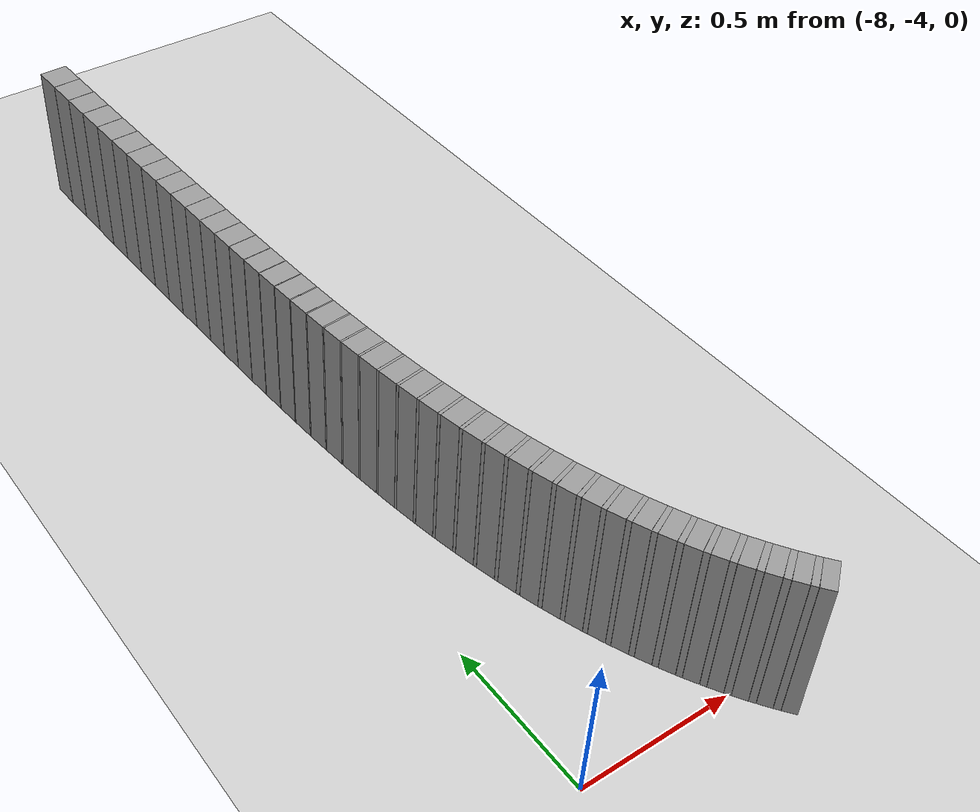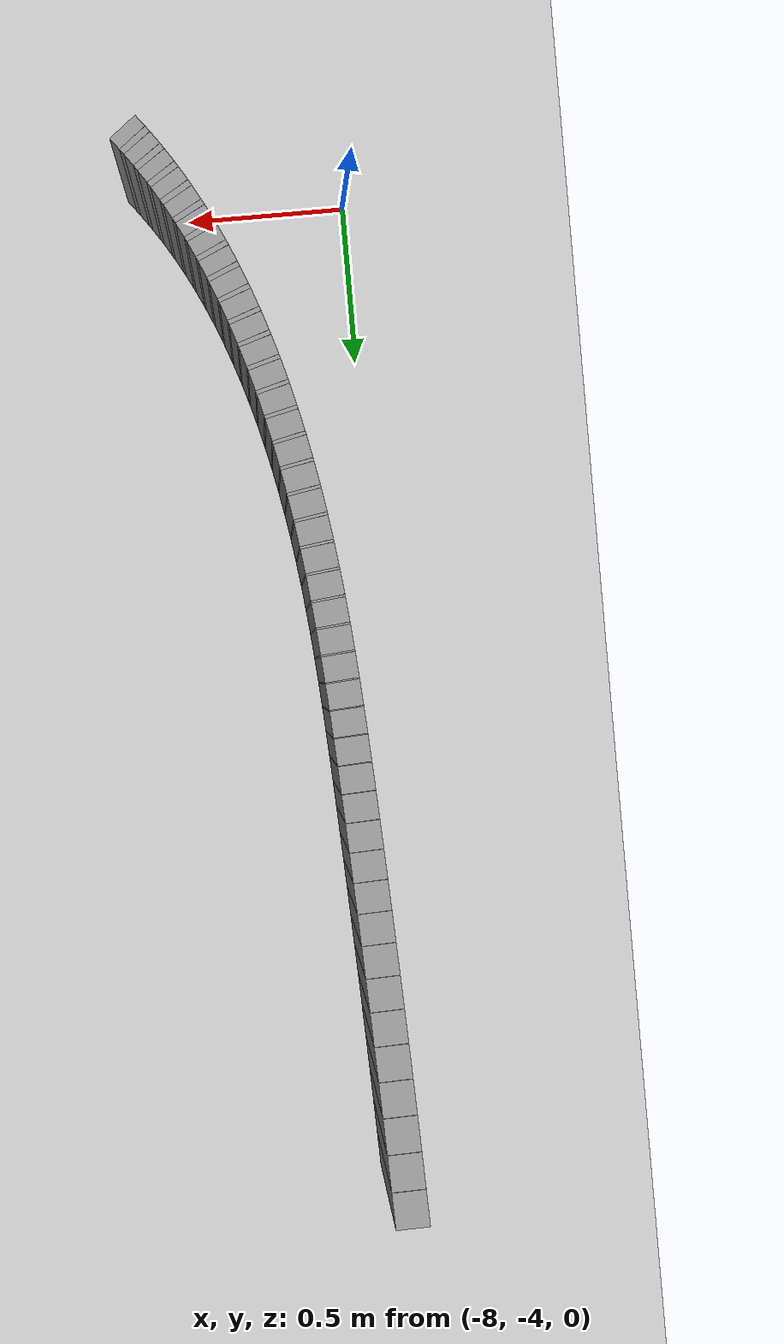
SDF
<sdf version="1.6">
 <world name="default">
  <include><uri>model://ground_plane</uri></include>
  <include><uri>model://sun</uri></include>
  <model name="wall_484_outward">
   <static>true</static>
   <link name="link">
    <collision name="collision">
     <geometry><box><size>0.04244919451512157 0.1 0.5</size></box></geometry>
    </collision>
    <visual name="visual">
     <geometry><box><size>0.04244919451512157 0.1 0.5</size></box></geometry>
     <material>
      <script><uri>file://media/materials/scripts/gazebo.material</uri><name>Gazebo/Gray</name></script>
     </material>
    </visual>
   </link>
   <pose>-7.360792149570613 -4.0997088846098775 0.25 0 0 2.2320401052152365</pose>
  </model>
  <model name="wall_485_outward">
   <static>true</static>
   <link name="link">
    <collision name="collision">
     <geometry><box><size>0.019919760158934884 0.1 0.5</size></box></geometry>
    </collision>
    <visual name="visual">
     <geometry><box><size>0.019919760158934884 0.1 0.5</size></box></geometry>
     <material>
      <script><uri>file://media/materials/scripts/gazebo.material</uri><name>Gazebo/Gray</name></script>
     </material>
    </visual>
   </link>
   <pose>-7.379784709054677 -4.074976912952583 0.25 0 0 2.21211902747135</pose>
  </model>
  <model name="wall_486_outward">
   <static>true</static>
   <link name="link">
    <collision name="collision">
     <geometry><box><size>0.04317632143590618 0.1 0.5</size></box></geometry>
    </collision>
    <visual name="visual">
     <geometry><box><size>0.04317632143590618 0.1 0.5</size></box></geometry>
     <material>
      <script><uri>file://media/materials/scripts/gazebo.material</uri><name>Gazebo/Gray</name></script>
     </material>
    </visual>
   </link>
   <pose>-7.398311360398857 -4.04944346935026 0.25 0 0 2.192197949727487</pose>
  </model>
  <model name="wall_487_outward">
   <static>true</static>
   <link name="link">
    <collision name="collision">
     <geometry><box><size>0.019626027928068102 0.1 0.5</size></box></geometry>
    </collision>
    <visual name="visual">
     <geometry><box><size>0.019626027928068102 0.1 0.5</size></box></geometry>
     <material>
      <script><uri>file://media/materials/scripts/gazebo.material</uri><name>Gazebo/Gray</name></script>
     </material>
    </visual>
   </link>
   <pose>-7.416434661345418 -4.023801743048844 0.25 0 0 2.1725706616521983</pose>
  </model>
  <model name="wall_488_outward">
   <static>true</static>
   <link name="link">
    <collision name="collision">
     <geometry><box><size>0.04414875001524926 0.1 0.5</size></box></geometry>
    </collision>
    <visual name="visual">
     <geometry><box><size>0.04414875001524926 0.1 0.5</size></box></geometry>
     <material>
      <script><uri>file://media/materials/scripts/gazebo.material</uri><name>Gazebo/Gray</name></script>
     </material>
    </visual>
   </link>
   <pose>-7.434126769373007 -3.997274182955338 0.25 0 0 2.1529433735769676</pose>
  </model>
  <model name="wall_489_outward">
   <static>true</static>
   <link name="link">
    <collision name="collision">
     <geometry><box><size>0.01915823500610529 0.1 0.5</size></box></geometry>
    </collision>
    <visual name="visual">
     <geometry><box><size>0.01915823500610529 0.1 0.5</size></box></geometry>
     <material>
      <script><uri>file://media/materials/scripts/gazebo.material</uri><name>Gazebo/Gray</name></script>
     </material>
    </visual>
   </link>
   <pose>-7.451376191076201 -3.97073509064579 0.25 0 0 2.133783966410626</pose>
  </model>
  <model name="wall_490_outward">
   <static>true</static>
   <link name="link">
    <collision name="collision">
     <geometry><box><size>0.045368008287901544 0.1 0.5</size></box></geometry>
    </collision>
    <visual name="visual">
     <geometry><box><size>0.045368008287901544 0.1 0.5</size></box></geometry>
     <material>
      <script><uri>file://media/materials/scripts/gazebo.material</uri><name>Gazebo/Gray</name></script>
     </material>
    </visual>
   </link>
   <pose>-7.4682257713263045 -3.9432228951354573 0.25 0 0 2.1146245592443127</pose>
  </model>
  <model name="wall_491_outward">
   <static>true</static>
   <link name="link">
    <collision name="collision">
     <geometry><box><size>0.01854029939488726 0.1 0.5</size></box></geometry>
    </collision>
    <visual name="visual">
     <geometry><box><size>0.01854029939488726 0.1 0.5</size></box></geometry>
     <material>
      <script><uri>file://media/materials/scripts/gazebo.material</uri><name>Gazebo/Gray</name></script>
     </material>
    </visual>
   </link>
   <pose>-7.484611452341312 -3.915791068445432 0.25 0 0 2.09608319750299</pose>
  </model>
  <model name="wall_492_outward">
   <static>true</static>
   <link name="link">
    <collision name="collision">
     <geometry><box><size>0.046823989958806135 0.1 0.5</size></box></geometry>
    </collision>
    <visual name="visual">
     <geometry><box><size>0.046823989958806135 0.1 0.5</size></box></geometry>
     <material>
      <script><uri>file://media/materials/scripts/gazebo.material</uri><name>Gazebo/Gray</name></script>
     </material>
    </visual>
   </link>
   <pose>-7.500622717756078 -3.8873009411961883 0.25 0 0 2.077541835761664</pose>
  </model>
  <model name="wall_493_outward">
   <static>true</static>
   <link name="link">
    <collision name="collision">
     <geometry><box><size>0.01779744238885363 0.1 0.5</size></box></geometry>
    </collision>
    <visual name="visual">
     <geometry><box><size>0.01779744238885363 0.1 0.5</size></box></geometry>
     <material>
      <script><uri>file://media/materials/scripts/gazebo.material</uri><name>Gazebo/Gray</name></script>
     </material>
    </visual>
   </link>
   <pose>-7.516165062064248 -3.8589751240433365 0.25 0 0 2.059743453685351</pose>
  </model>
  <model name="wall_494_outward">
   <static>true</static>
   <link name="link">
    <collision name="collision">
     <geometry><box><size>0.04849618014029022 0.1 0.5</size></box></geometry>
    </collision>
    <visual name="visual">
     <geometry><box><size>0.04849618014029022 0.1 0.5</size></box></geometry>
     <material>
      <script><uri>file://media/materials/scripts/gazebo.material</uri><name>Gazebo/Gray</name></script>
     </material>
    </visual>
   </link>
   <pose>-7.531351216240717 -3.8295128860803542 0.25 0 0 2.0419450716089687</pose>
  </model>
  <model name="wall_495_outward">
   <static>true</static>
   <link name="link">
    <collision name="collision">
     <geometry><box><size>0.016989855291846278 0.1 0.5</size></box></geometry>
    </collision>
    <visual name="visual">
     <geometry><box><size>0.016989855291846278 0.1 0.5</size></box></geometry>
     <material>
      <script><uri>file://media/materials/scripts/gazebo.material</uri><name>Gazebo/Gray</name></script>
     </material>
    </visual>
   </link>
   <pose>-7.546084445714153 -3.8002728844509743 0.25 0 0 2.024954398842619</pose>
  </model>
  <model name="wall_496_outward">
   <static>true</static>
   <link name="link">
    <collision name="collision">
     <geometry><box><size>0.05035377058352918 0.1 0.5</size></box></geometry>
    </collision>
    <visual name="visual">
     <geometry><box><size>0.05035377058352918 0.1 0.5</size></box></geometry>
     <material>
      <script><uri>file://media/materials/scripts/gazebo.material</uri><name>Gazebo/Gray</name></script>
     </material>
    </visual>
   </link>
   <pose>-7.560470483273241 -3.769829967885051 0.25 0 0 2.0079637260762997</pose>
  </model>
  <model name="wall_497_outward">
   <static>true</static>
   <link name="link">
    <collision name="collision">
     <geometry><box><size>0.016170084333728782 0.1 0.5</size></box></geometry>
    </collision>
    <visual name="visual">
     <geometry><box><size>0.016170084333728782 0.1 0.5</size></box></geometry>
     <material>
      <script><uri>file://media/materials/scripts/gazebo.material</uri><name>Gazebo/Gray</name></script>
     </material>
    </visual>
   </link>
   <pose>-7.574433862220147 -3.739641780807932 0.25 0 0 1.9917929369899485</pose>
  </model>
  <model name="wall_498_outward">
   <static>true</static>
   <link name="link">
    <collision name="collision">
     <geometry><box><size>0.05235848907713479 0.1 0.5</size></box></geometry>
    </collision>
    <visual name="visual">
     <geometry><box><size>0.05235848907713479 0.1 0.5</size></box></geometry>
     <material>
      <script><uri>file://media/materials/scripts/gazebo.material</uri><name>Gazebo/Gray</name></script>
     </material>
    </visual>
   </link>
   <pose>-7.588048900711474 -3.70819950475273 0.25 0 0 1.9756221479035692</pose>
  </model>
  <model name="wall_499_outward">
   <static>true</static>
   <link name="link">
    <collision name="collision">
     <geometry><box><size>0.015360197503627639 0.1 0.5</size></box></geometry>
    </collision>
    <visual name="visual">
     <geometry><box><size>0.015360197503627639 0.1 0.5</size></box></geometry>
     <material>
      <script><uri>file://media/materials/scripts/gazebo.material</uri><name>Gazebo/Gray</name></script>
     </material>
    </visual>
   </link>
   <pose>-7.601275907024817 -3.6770313480505488 0.25 0 0 1.9602613463326866</pose>
  </model>
  <model name="wall_500_outward">
   <static>true</static>
   <link name="link">
    <collision name="collision">
     <geometry><box><size>0.05446264380897908 0.1 0.5</size></box></geometry>
    </collision>
    <visual name="visual">
     <geometry><box><size>0.05446264380897908 0.1 0.5</size></box></geometry>
     <material>
      <script><uri>file://media/materials/scripts/gazebo.material</uri><name>Gazebo/Gray</name></script>
     </material>
    </visual>
   </link>
   <pose>-7.614143373970331 -3.644578517044145 0.25 0 0 1.9449005447618908</pose>
  </model>
  <model name="wall_501_outward">
   <static>true</static>
   <link name="link">
    <collision name="collision">
     <geometry><box><size>0.01458146432202571 0.1 0.5</size></box></geometry>
    </collision>
    <visual name="visual">
     <geometry><box><size>0.01458146432202571 0.1 0.5</size></box></geometry>
     <material>
      <script><uri>file://media/materials/scripts/gazebo.material</uri><name>Gazebo/Gray</name></script>
     </material>
    </visual>
   </link>
   <pose>-7.626659833770512 -3.612406040668778 0.25 0 0 1.9303185636741047</pose>
  </model>
  <model name="wall_502_outward">
   <static>true</static>
   <link name="link">
    <collision name="collision">
     <geometry><box><size>0.056615332645626903 0.1 0.5</size></box></geometry>
    </collision>
    <visual name="visual">
     <geometry><box><size>0.056615332645626903 0.1 0.5</size></box></geometry>
     <material>
      <script><uri>file://media/materials/scripts/gazebo.material</uri><name>Gazebo/Gray</name></script>
     </material>
    </visual>
   </link>
   <pose>-7.638796877712667 -3.578941219504931 0.25 0 0 1.9157365825863484</pose>
  </model>
  <model name="wall_503_outward">
   <static>true</static>
   <link name="link">
    <collision name="collision">
     <geometry><box><size>0.013851226154989104 0.1 0.5</size></box></geometry>
    </collision>
    <visual name="visual">
     <geometry><box><size>0.013851226154989104 0.1 0.5</size></box></geometry>
     <material>
      <script><uri>file://media/materials/scripts/gazebo.material</uri><name>Gazebo/Gray</name></script>
     </material>
    </visual>
   </link>
   <pose>-7.650620172462222 -3.5457515213487962 0.25 0 0 1.9018849134852172</pose>
  </model>
  <model name="wall_504_outward">
   <static>true</static>
   <link name="link">
    <collision name="collision"><geometry><box><size>0.058765057955193 0.1 0.5</size></box></geometry></collision>
    <visual name="visual">
     <geometry><box><size>0.058765057955193 0.1 0.5</size></box></geometry>
     <material>
      <script><uri>file://media/materials/scripts/gazebo.material</uri><name>Gazebo/Gray</name></script>
     </material>
    </visual>
   </link>
   <pose>-7.662037161042972 -3.51128567581868 0.25 0 0 1.8880332443841024</pose>
  </model>
  <model name="wall_505_outward">
   <static>true</static>
   <link name="link">
    <collision name="collision">
     <geometry><box><size>0.013169628464407957 0.1 0.5</size></box></geometry>
    </collision>
    <visual name="visual">
     <geometry><box><size>0.013169628464407957 0.1 0.5</size></box></geometry>
     <material>
      <script><uri>file://media/materials/scripts/gazebo.material</uri><name>Gazebo/Gray</name></script>
     </material>
    </visual>
   </link>
   <pose>-7.673174335237647 -3.477086559304724 0.25 0 0 1.8748632352018126</pose>
  </model>
  <model name="wall_506_outward">
   <static>true</static>
   <link name="link">
    <collision name="collision">
     <geometry><box><size>0.060861806396460376 0.1 0.5</size></box></geometry>
    </collision>
    <visual name="visual">
     <geometry><box><size>0.060861806396460376 0.1 0.5</size></box></geometry>
     <material>
      <script><uri>file://media/materials/scripts/gazebo.material</uri><name>Gazebo/Gray</name></script>
     </material>
    </visual>
   </link>
   <pose>-7.683873783254639 -3.441651401714206 0.25 0 0 1.861693226019626</pose>
  </model>
  <model name="wall_507_outward">
   <static>true</static>
   <link name="link">
    <collision name="collision">
     <geometry><box><size>0.012537144329693384 0.1 0.5</size></box></geometry>
    </collision>
    <visual name="visual">
     <geometry><box><size>0.012537144329693384 0.1 0.5</size></box></geometry>
     <material>
      <script><uri>file://media/materials/scripts/gazebo.material</uri><name>Gazebo/Gray</name></script>
     </material>
    </visual>
   </link>
   <pose>-7.6943241874708175 -3.4064717121323467 0.25 0 0 1.8491557532353722</pose>
  </model>
  <model name="wall_508_outward">
   <static>true</static>
   <link name="link">
    <collision name="collision">
     <geometry><box><size>0.0628574224108534 0.1 0.5</size></box></geometry>
    </collision>
    <visual name="visual">
     <geometry><box><size>0.0628574224108534 0.1 0.5</size></box></geometry>
     <material>
      <script><uri>file://media/materials/scripts/gazebo.material</uri><name>Gazebo/Gray</name></script>
     </material>
    </visual>
   </link>
   <pose>-7.704303056072229 -3.37011959545128 0.25 0 0 1.836618280451041</pose>
  </model>
  <model name="wall_509_outward">
   <static>true</static>
   <link name="link">
    <collision name="collision">
     <geometry><box><size>0.0119330861117314 0.1 0.5</size></box></geometry>
    </collision>
    <visual name="visual">
     <geometry><box><size>0.0119330861117314 0.1 0.5</size></box></geometry>
     <material>
      <script><uri>file://media/materials/scripts/gazebo.material</uri><name>Gazebo/Gray</name></script>
     </material>
    </visual>
   </link>
   <pose>-7.714058070508317 -3.334019484218976 0.25 0 0 1.8246849111121595</pose>
  </model>
  <model name="wall_510_outward">
   <static>true</static>
   <link name="link">
    <collision name="collision">
     <geometry><box><size>0.06471561028098367 0.1 0.5</size></box></geometry>
    </collision>
    <visual name="visual">
     <geometry><box><size>0.06471561028098367 0.1 0.5</size></box></geometry>
     <material>
      <script><uri>file://media/materials/scripts/gazebo.material</uri><name>Gazebo/Gray</name></script>
     </material>
    </visual>
   </link>
   <pose>-7.723309659443098 -3.2968289441071095 0.25 0 0 1.8127515417732505</pose>
  </model>
  <model name="wall_511_outward">
   <static>true</static>
   <link name="link">
    <collision name="collision">
     <geometry><box><size>0.011345373914554558 0.1 0.5</size></box></geometry>
    </collision>
    <visual name="visual">
     <geometry><box><size>0.011345373914554558 0.1 0.5</size></box></geometry>
     <material>
      <script><uri>file://media/materials/scripts/gazebo.material</uri><name>Gazebo/Gray</name></script>
     </material>
    </visual>
   </link>
   <pose>-7.732359244967063 -3.2598911625893985 0.25 0 0 1.8014059244532021</pose>
  </model>
  <model name="wall_512_outward">
   <static>true</static>
   <link name="link">
    <collision name="collision">
     <geometry><box><size>0.06640615573265171 0.1 0.5</size></box></geometry>
    </collision>
    <visual name="visual">
     <geometry><box><size>0.06640615573265171 0.1 0.5</size></box></geometry>
     <material>
      <script><uri>file://media/materials/scripts/gazebo.material</uri><name>Gazebo/Gray</name></script>
     </material>
    </visual>
   </link>
   <pose>-7.7408779009547075 -3.2219605239713185 0.25 0 0 1.7900603071331844</pose>
  </model>
  <model name="wall_513_outward">
   <static>true</static>
   <link name="link">
    <collision name="collision">
     <geometry><box><size>0.010760801550555185 0.1 0.5</size></box></geometry>
    </collision>
    <visual name="visual">
     <geometry><box><size>0.010760801550555185 0.1 0.5</size></box></geometry>
     <material>
      <script><uri>file://media/materials/scripts/gazebo.material</uri><name>Gazebo/Gray</name></script>
     </material>
    </visual>
   </link>
   <pose>-7.749213663954934 -3.1842885291685343 0.25 0 0 1.779299297897594</pose>
  </model>
  <model name="wall_514_outward">
   <static>true</static>
   <link name="link">
    <collision name="collision">
     <geometry><box><size>0.06791325480914502 0.1 0.5</size></box></geometry>
    </collision>
    <visual name="visual">
     <geometry><box><size>0.06791325480914502 0.1 0.5</size></box></geometry>
     <material>
      <script><uri>file://media/materials/scripts/gazebo.material</uri><name>Gazebo/Gray</name></script>
     </material>
    </visual>
   </link>
   <pose>-7.7569983591956735 -3.1457297539070073 0.25 0 0 1.7685382886619632</pose>
  </model>
  <model name="wall_515_outward">
   <static>true</static>
   <link name="link">
    <collision name="collision">
     <geometry><box><size>0.01015551382015984 0.1 0.5</size></box></geometry>
    </collision>
    <visual name="visual">
     <geometry><box><size>0.01015551382015984 0.1 0.5</size></box></geometry>
     <material>
      <script><uri>file://media/materials/scripts/gazebo.material</uri><name>Gazebo/Gray</name></script>
     </material>
    </visual>
   </link>
   <pose>-7.764616276568824 -3.107446171127222 0.25 0 0 1.758382600269834</pose>
  </model>
  <model name="wall_516_outward">
   <static>true</static>
   <link name="link">
    <collision name="collision">
     <geometry><box><size>0.06923277294627306 0.1 0.5</size></box></geometry>
    </collision>
    <visual name="visual">
     <geometry><box><size>0.06923277294627306 0.1 0.5</size></box></geometry>
     <material>
      <script><uri>file://media/materials/scripts/gazebo.material</uri><name>Gazebo/Gray</name></script>
     </material>
    </visual>
   </link>
   <pose>-7.771673047278734 -3.0683845675081614 0.25 0 0 1.7482269118776255</pose>
  </model>
  <model name="wall_517_outward">
   <static>true</static>
   <link name="link">
    <collision name="collision">
     <geometry><box><size>0.009519634597799332 0.1 0.5</size></box></geometry>
    </collision>
    <visual name="visual">
     <geometry><box><size>0.009519634597799332 0.1 0.5</size></box></geometry>
     <material>
      <script><uri>file://media/materials/scripts/gazebo.material</uri><name>Gazebo/Gray</name></script>
     </material>
    </visual>
   </link>
   <pose>-7.77857835145695 -3.029618767302943 0.25 0 0 1.7387071334902076</pose>
  </model>
  <model name="wall_518_outward">
   <static>true</static>
   <link name="link">
    <collision name="collision">
     <geometry><box><size>0.0703748483102471 0.1 0.5</size></box></geometry>
    </collision>
    <visual name="visual">
     <geometry><box><size>0.0703748483102471 0.1 0.5</size></box></geometry>
     <material>
      <script><uri>file://media/materials/scripts/gazebo.material</uri><name>Gazebo/Gray</name></script>
     </material>
    </visual>
   </link>
   <pose>-7.784923923592405 -2.99017893165947 0.25 0 0 1.729187355102945</pose>
  </model>
  <model name="wall_519_outward">
   <static>true</static>
   <link name="link">
    <collision name="collision">
     <geometry><box><size>0.008839992507646105 0.1 0.5</size></box></geometry>
    </collision>
    <visual name="visual">
     <geometry><box><size>0.008839992507646105 0.1 0.5</size></box></geometry>
     <material>
      <script><uri>file://media/materials/scripts/gazebo.material</uri><name>Gazebo/Gray</name></script>
     </material>
    </visual>
   </link>
   <pose>-7.7911325745159585 -2.951061310935649 0.25 0 0 1.7203472474570514</pose>
  </model>
  <model name="wall_520_outward">
   <static>true</static>
   <link name="link">
    <collision name="collision">
     <geometry><box><size>0.07136301716718527 0.1 0.5</size></box></geometry>
    </collision>
    <visual name="visual">
     <geometry><box><size>0.07136301716718527 0.1 0.5</size></box></geometry>
     <material>
      <script><uri>file://media/materials/scripts/gazebo.material</uri><name>Gazebo/Gray</name></script>
     </material>
    </visual>
   </link>
   <pose>-7.796795350107956 -2.911361797864445 0.25 0 0 1.711507139811105</pose>
  </model>
  <model name="wall_521_outward">
   <static>true</static>
   <link name="link">
    <collision name="collision">
     <geometry><box><size>0.008112979230536896 0.1 0.5</size></box></geometry>
    </collision>
    <visual name="visual">
     <geometry><box><size>0.008112979230536896 0.1 0.5</size></box></geometry>
     <material>
      <script><uri>file://media/materials/scripts/gazebo.material</uri><name>Gazebo/Gray</name></script>
     </material>
    </visual>
   </link>
   <pose>-7.8023358789947 -2.8720120645312717 0.25 0 0 1.7033940715779352</pose>
  </model>
  <model name="wall_522_outward">
   <static>true</static>
   <link name="link">
    <collision name="collision">
     <geometry><box><size>0.07223084175084533 0.1 0.5</size></box></geometry>
    </collision>
    <visual name="visual">
     <geometry><box><size>0.07223084175084533 0.1 0.5</size></box></geometry>
     <material>
      <script><uri>file://media/materials/scripts/gazebo.material</uri><name>Gazebo/Gray</name></script>
     </material>
    </visual>
   </link>
   <pose>-7.807356399526826 -2.832155231703183 0.25 0 0 1.6952810033448265</pose>
  </model>
  <model name="wall_523_outward">
   <static>true</static>
   <link name="link">
    <collision name="collision">
     <geometry><box><size>0.007342393637504099 0.1 0.5</size></box></geometry>
    </collision>
    <visual name="visual">
     <geometry><box><size>0.007342393637504099 0.1 0.5</size></box></geometry>
     <material>
      <script><uri>file://media/materials/scripts/gazebo.material</uri><name>Gazebo/Gray</name></script>
     </material>
    </visual>
   </link>
   <pose>-7.8122696827435245 -2.7926732428016026 0.25 0 0 1.6879385437334973</pose>
  </model>
  <model name="wall_524_outward">
   <static>true</static>
   <link name="link">
    <collision name="collision">
     <geometry><box><size>0.07302781397602964 0.1 0.5</size></box></geometry>
    </collision>
    <visual name="visual">
     <geometry><box><size>0.07302781397602964 0.1 0.5</size></box></geometry>
     <material>
      <script><uri>file://media/materials/scripts/gazebo.material</uri><name>Gazebo/Gray</name></script>
     </material>
    </visual>
   </link>
   <pose>-7.816699919135911 -2.7527331833793935 0.25 0 0 1.6805960841219825</pose>
  </model>
  <model name="wall_525_outward">
   <static>true</static>
   <link name="link">
    <collision name="collision">
     <geometry><box><size>0.006525713487697375 0.1 0.5</size></box></geometry>
    </collision>
    <visual name="visual">
     <geometry><box><size>0.006525713487697375 0.1 0.5</size></box></geometry>
     <material>
      <script><uri>file://media/materials/scripts/gazebo.material</uri><name>Gazebo/Gray</name></script>
     </material>
    </visual>
   </link>
   <pose>-7.821037455858605 -2.7131936887626003 0.25 0 0 1.6740703243171613</pose>
  </model>
  <model name="wall_526_outward">
   <static>true</static>
   <link name="link">
    <collision name="collision">
     <geometry><box><size>0.07380515246743533 0.1 0.5</size></box></geometry>
    </collision>
    <visual name="visual">
     <geometry><box><size>0.07380515246743533 0.1 0.5</size></box></geometry>
     <material>
      <script><uri>file://media/materials/scripts/gazebo.material</uri><name>Gazebo/Gray</name></script>
     </material>
    </visual>
   </link>
   <pose>-7.824938517534811 -2.6732182138253355 0.25 0 0 1.667544564512447</pose>
  </model>
  <model name="wall_527_outward">
   <static>true</static>
   <link name="link">
    <collision name="collision">
     <geometry><box><size>0.0056823194938011865 0.1 0.5</size></box></geometry>
    </collision>
    <visual name="visual">
     <geometry><box><size>0.0056823194938011865 0.1 0.5</size></box></geometry>
     <material>
      <script><uri>file://media/materials/scripts/gazebo.material</uri><name>Gazebo/Gray</name></script>
     </material>
    </visual>
   </link>
   <pose>-7.828761584893556 -2.633658824038715 0.25 0 0 1.6618622144389685</pose>
  </model>
  <model name="wall_528_outward">
   <static>true</static>
   <link name="link">
    <collision name="collision">
     <geometry><box><size>0.07461887223041166 0.1 0.5</size></box></geometry>
    </collision>
    <visual name="visual">
     <geometry><box><size>0.07461887223041166 0.1 0.5</size></box></geometry>
     <material>
      <script><uri>file://media/materials/scripts/gazebo.material</uri><name>Gazebo/Gray</name></script>
     </material>
    </visual>
   </link>
   <pose>-7.832201702512328 -2.5936559176924403 0.25 0 0 1.6561798643656158</pose>
  </model>
  <model name="wall_529_outward">
   <static>true</static>
   <link name="link">
    <collision name="collision">
     <geometry><box><size>0.004832850392004164 0.1 0.5</size></box></geometry>
    </collision>
    <visual name="visual">
     <geometry><box><size>0.004832850392004164 0.1 0.5</size></box></geometry>
     <material>
      <script><uri>file://media/materials/scripts/gazebo.material</uri><name>Gazebo/Gray</name></script>
     </material>
    </visual>
   </link>
   <pose>-7.835577879103939 -2.554073808314384 0.25 0 0 1.6513469951603517</pose>
  </model>
  <model name="wall_530_outward">
   <static>true</static>
   <link name="link">
    <collision name="collision">
     <geometry><box><size>0.07552529958861166 0.1 0.5</size></box></geometry>
    </collision>
    <visual name="visual">
     <geometry><box><size>0.07552529958861166 0.1 0.5</size></box></geometry>
     <material>
      <script><uri>file://media/materials/scripts/gazebo.material</uri><name>Gazebo/Gray</name></script>
     </material>
    </visual>
   </link>
   <pose>-7.8386288867098255 -2.514010766887612 0.25 0 0 1.6465141259551475</pose>
  </model>
  <model name="wall_531_outward">
   <static>true</static>
   <link name="link">
    <collision name="collision">
     <geometry><box><size>0.004007667068157989 0.1 0.5</size></box></geometry>
    </collision>
    <visual name="visual">
     <geometry><box><size>0.004007667068157989 0.1 0.5</size></box></geometry>
     <material>
      <script><uri>file://media/materials/scripts/gazebo.material</uri><name>Gazebo/Gray</name></script>
     </material>
    </visual>
   </link>
   <pose>-7.841629032094578 -2.4743576319723823 0.25 0 0 1.6425064481587897</pose>
  </model>
  <model name="wall_532_outward">
   <static>true</static>
   <link name="link">
    <collision name="collision">
     <geometry><box><size>0.07657312578282831 0.1 0.5</size></box></geometry>
    </collision>
    <visual name="visual">
     <geometry><box><size>0.07657312578282831 0.1 0.5</size></box></geometry>
     <material>
      <script><uri>file://media/materials/scripts/gazebo.material</uri><name>Gazebo/Gray</name></script>
     </material>
    </visual>
   </link>
   <pose>-7.8443627182386475 -2.434160097570935 0.25 0 0 1.638498770362435</pose>
  </model>
  <model name="wall_533_outward">
   <static>true</static>
   <link name="link">
    <collision name="collision">
     <geometry><box><size>0.003234446017782918 0.1 0.5</size></box></geometry>
    </collision>
    <visual name="visual">
     <geometry><box><size>0.003234446017782918 0.1 0.5</size></box></geometry>
     <material>
      <script><uri>file://media/materials/scripts/gazebo.material</uri><name>Gazebo/Gray</name></script>
     </material>
    </visual>
   </link>
   <pose>-7.847057019275977 -2.39434738322824 0.25 0 0 1.6352643187052966</pose>
  </model>
  <model name="wall_534_outward">
   <static>true</static>
   <link name="link">
    <collision name="collision">
     <geometry><box><size>0.07780319401722931 0.1 0.5</size></box></geometry>
    </collision>
    <visual name="visual">
     <geometry><box><size>0.07780319401722931 0.1 0.5</size></box></geometry>
     <material>
      <script><uri>file://media/materials/scripts/gazebo.material</uri><name>Gazebo/Gray</name></script>
     </material>
    </visual>
   </link>
   <pose>-7.849541800355778 -2.3539048316219655 0.25 0 0 1.6320298670476001</pose>
  </model>
  <model name="wall_535_outward">
   <static>true</static>
   <link name="link">
    <collision name="collision">
     <geometry><box><size>0.002540727116512026 0.1 0.5</size></box></geometry>
    </collision>
    <visual name="visual">
     <geometry><box><size>0.002540727116512026 0.1 0.5</size></box></geometry>
     <material>
      <script><uri>file://media/materials/scripts/gazebo.material</uri><name>Gazebo/Gray</name></script>
     </material>
    </visual>
   </link>
   <pose>-7.85199691292585 -2.3138079674174086 0.25 0 0 1.62948913719772</pose>
  </model>
  <model name="wall_536_outward">
   <static>true</static>
   <link name="link">
    <collision name="collision">
     <geometry><box><size>0.07924499359637993 0.1 0.5</size></box></geometry>
    </collision>
    <visual name="visual">
     <geometry><box><size>0.07924499359637993 0.1 0.5</size></box></geometry>
     <material>
      <script><uri>file://media/materials/scripts/gazebo.material</uri><name>Gazebo/Gray</name></script>
     </material>
    </visual>
   </link>
   <pose>-7.854295147950046 -2.27297974410341 0.25 0 0 1.6269484073475242</pose>
  </model>
  <model name="wall_537_outward">
   <static>true</static>
   <link name="link">
    <collision name="collision">
     <geometry><box><size>0.0019500424219423252 0.1 0.5</size></box></geometry>
    </collision>
    <visual name="visual">
     <geometry><box><size>0.0019500424219423252 0.1 0.5</size></box></geometry>
     <material>
      <script><uri>file://media/materials/scripts/gazebo.material</uri><name>Gazebo/Gray</name></script>
     </material>
    </visual>
   </link>
   <pose>-7.856571686830753 -2.2324461075490474 0.25 0 0 1.6249983636894807</pose>
  </model>
  <model name="wall_538_outward">
   <static>true</static>
   <link name="link">
    <collision name="collision">
     <geometry><box><size>0.08091243030659236 0.1 0.5</size></box></geometry>
    </collision>
    <visual name="visual">
     <geometry><box><size>0.08091243030659236 0.1 0.5</size></box></geometry>
     <material>
      <script><uri>file://media/materials/scripts/gazebo.material</uri><name>Gazebo/Gray</name></script>
     </material>
    </visual>
   </link>
   <pose>-7.858737465177307 -2.1910715187193497 0.25 0 0 1.62304832003186</pose>
  </model>
  <model name="wall_539_outward">
   <static>true</static>
   <link name="link">
    <collision name="collision">
     <geometry><box><size>0.0014751514571013252 0.1 0.5</size></box></geometry>
    </collision>
    <visual name="visual">
     <geometry><box><size>0.0014751514571013252 0.1 0.5</size></box></geometry>
     <material>
      <script><uri>file://media/materials/scripts/gazebo.material</uri><name>Gazebo/Gray</name></script>
     </material>
    </visual>
   </link>
   <pose>-7.860887856935333 -2.1499338941212844 0.25 0 0 1.6215731680392933</pose>
  </model>
  <model name="wall_540_outward">
   <static>true</static>
   <link name="link">
    <collision name="collision">
     <geometry><box><size>0.08280116736972147 0.1 0.5</size></box></geometry>
    </collision>
    <visual name="visual">
     <geometry><box><size>0.08280116736972147 0.1 0.5</size></box></geometry>
     <material>
      <script><uri>file://media/materials/scripts/gazebo.material</uri><name>Gazebo/Gray</name></script>
     </material>
    </visual>
   </link>
   <pose>-7.862965584545279 -2.107846990454226 0.25 0 0 1.6200980160476333</pose>
  </model>
  <model name="wall_541_outward">
   <static>true</static>
   <link name="link">
    <collision name="collision">
     <geometry><box><size>0.0011250740665275656 0.1 0.5</size></box></geometry>
    </collision>
    <visual name="visual">
     <geometry><box><size>0.0011250740665275656 0.1 0.5</size></box></geometry>
     <material>
      <script><uri>file://media/materials/scripts/gazebo.material</uri><name>Gazebo/Gray</name></script>
     </material>
    </visual>
   </link>
   <pose>-7.8650329671287516 -2.06593482753965 0.25 0 0 1.6189729417436347</pose>
  </model>
  <model name="wall_542_outward">
   <static>true</static>
   <link name="link">
    <collision name="collision">
     <geometry><box><size>0.08489370983669903 0.1 0.5</size></box></geometry>
    </collision>
    <visual name="visual">
     <geometry><box><size>0.08489370983669903 0.1 0.5</size></box></geometry>
     <material>
      <script><uri>file://media/materials/scripts/gazebo.material</uri><name>Gazebo/Gray</name></script>
     </material>
    </visual>
   </link>
   <pose>-7.867056510865153 -2.0229730650458944 0.25 0 0 1.6178478674398753</pose>
  </model>
  <model name="wall_543_outward">
   <static>true</static>
   <link name="link">
    <collision name="collision">
     <geometry><box><size>0.0008870609274042903 0.1 0.5</size></box></geometry>
    </collision>
    <visual name="visual">
     <geometry><box><size>0.0008870609274042903 0.1 0.5</size></box></geometry>
     <material>
      <script><uri>file://media/materials/scripts/gazebo.material</uri><name>Gazebo/Gray</name></script>
     </material>
    </visual>
   </link>
   <pose>-7.8690734320349645 -1.9801301289606825 0.25 0 0 1.6169608063965208</pose>
  </model>
  <model name="wall_544_outward">
   <static>true</static>
   <link name="link">
    <collision name="collision">
     <geometry><box><size>0.08715818589282995 0.1 0.5</size></box></geometry>
    </collision>
    <visual name="visual">
     <geometry><box><size>0.08715818589282995 0.1 0.5</size></box></geometry>
     <material>
      <script><uri>file://media/materials/scripts/gazebo.material</uri><name>Gazebo/Gray</name></script>
     </material>
    </visual>
   </link>
   <pose>-7.871066374843007 -1.9361526399957179 0.25 0 0 1.6160737453523977</pose>
  </model>
  <model name="wall_545_outward">
   <static>true</static>
   <link name="link">
    <collision name="collision">
     <geometry><box><size>0.0007485914189037759 0.1 0.5</size></box></geometry>
    </collision>
    <visual name="visual">
     <geometry><box><size>0.0007485914189037759 0.1 0.5</size></box></geometry>
     <material>
      <script><uri>file://media/materials/scripts/gazebo.material</uri><name>Gazebo/Gray</name></script>
     </material>
    </visual>
   </link>
   <pose>-7.873055511011486 -1.8922442842704557 0.25 0 0 1.615325153864033</pose>
  </model>
  <model name="wall_546_outward">
   <static>true</static>
   <link name="link">
    <collision name="collision">
     <geometry><box><size>0.08955072021821656 0.1 0.5</size></box></geometry>
    </collision>
    <visual name="visual">
     <geometry><box><size>0.08955072021821656 0.1 0.5</size></box></geometry>
     <material>
      <script><uri>file://media/materials/scripts/gazebo.material</uri><name>Gazebo/Gray</name></script>
     </material>
    </visual>
   </link>
   <pose>-7.875031822113737 -1.84713790328539 0.25 0 0 1.6145765623747559</pose>
  </model>
  <model name="wall_547_outward">
   <static>true</static>
   <link name="link">
    <collision name="collision">
     <geometry><box><size>0.0006961349409967434 0.1 0.5</size></box></geometry>
    </collision>
    <visual name="visual">
     <geometry><box><size>0.0006961349409967434 0.1 0.5</size></box></geometry>
     <material>
      <script><uri>file://media/materials/scripts/gazebo.material</uri><name>Gazebo/Gray</name></script>
     </material>
    </visual>
   </link>
   <pose>-7.877006463309362 -1.8020577025191107 0.25 0 0 1.6138804273769107</pose>
  </model>
  <model name="wall_548_outward">
   <static>true</static>
   <link name="link">
    <collision name="collision">
     <geometry><box><size>0.09201951038259523 0.1 0.5</size></box></geometry>
    </collision>
    <visual name="visual">
     <geometry><box><size>0.09201951038259523 0.1 0.5</size></box></geometry>
     <material>
      <script><uri>file://media/materials/scripts/gazebo.material</uri><name>Gazebo/Gray</name></script>
     </material>
    </visual>
   </link>
   <pose>-7.878971130798179 -1.7557415304423918 0.25 0 0 1.6131842923803124</pose>
  </model>
  <model name="wall_549_outward">
   <static>true</static>
   <link name="link">
    <collision name="collision">
     <geometry><box><size>0.0007041177549821425 0.1 0.5</size></box></geometry>
    </collision>
    <visual name="visual">
     <geometry><box><size>0.0007041177549821425 0.1 0.5</size></box></geometry>
     <material>
      <script><uri>file://media/materials/scripts/gazebo.material</uri><name>Gazebo/Gray</name></script>
     </material>
    </visual>
   </link>
   <pose>-7.880935477671308 -1.7094213497747799 0.25 0 0 1.612480174566837</pose>
  </model>
  <model name="wall_550_outward">
   <static>true</static>
   <link name="link">
    <collision name="collision">
     <geometry><box><size>0.09450843228317951 0.1 0.5</size></box></geometry>
    </collision>
    <visual name="visual">
     <geometry><box><size>0.09450843228317951 0.1 0.5</size></box></geometry>
     <material>
      <script><uri>file://media/materials/scripts/gazebo.material</uri><name>Gazebo/Gray</name></script>
     </material>
    </visual>
   </link>
   <pose>-7.882886071656327 -1.6618550529244889 0.25 0 0 1.611776056753985</pose>
  </model>
  <model name="wall_551_outward">
   <static>true</static>
   <link name="link">
    <collision name="collision">
     <geometry><box><size>0.000748829050942872 0.1 0.5</size></box></geometry>
    </collision>
    <visual name="visual">
     <geometry><box><size>0.000748829050942872 0.1 0.5</size></box></geometry>
     <material>
      <script><uri>file://media/materials/scripts/gazebo.material</uri><name>Gazebo/Gray</name></script>
     </material>
    </visual>
   </link>
   <pose>-7.88483705369277 -1.6142663975705946 0.25 0 0 1.611027227633267</pose>
  </model>
  <model name="wall_552_outward">
   <static>true</static>
   <link name="link">
    <collision name="collision">
     <geometry><box><size>0.09696275744486466 0.1 0.5</size></box></geometry>
    </collision>
    <visual name="visual">
     <geometry><box><size>0.09696275744486466 0.1 0.5</size></box></geometry>
     <material>
      <script><uri>file://media/materials/scripts/gazebo.material</uri><name>Gazebo/Gray</name></script>
     </material>
    </visual>
   </link>
   <pose>-7.886765760668073 -1.565448689583568 0.25 0 0 1.610278398512132</pose>
  </model>
  <model name="wall_553_outward">
   <static>true</static>
   <link name="link">
    <collision name="collision">
     <geometry><box><size>0.0008172026190109614 0.1 0.5</size></box></geometry>
    </collision>
    <visual name="visual">
     <geometry><box><size>0.0008172026190109614 0.1 0.5</size></box></geometry>
     <material>
      <script><uri>file://media/materials/scripts/gazebo.material</uri><name>Gazebo/Gray</name></script>
     </material>
    </visual>
   </link>
   <pose>-7.88869520325273 -1.5165967972393959 0.25 0 0 1.6094611958021505</pose>
  </model>
  <model name="wall_554_outward">
   <static>true</static>
   <link name="link">
    <collision name="collision">
     <geometry><box><size>0.09932976204297828 0.1 0.5</size></box></geometry>
    </collision>
    <visual name="visual">
     <geometry><box><size>0.09932976204297828 0.1 0.5</size></box></geometry>
     <material>
      <script><uri>file://media/materials/scripts/gazebo.material</uri><name>Gazebo/Gray</name></script>
     </material>
    </visual>
   </link>
   <pose>-7.890590248947108 -1.466559187174401 0.25 0 0 1.6086439930921952</pose>
  </model>
  <model name="wall_555_outward">
   <static>true</static>
   <link name="link">
    <collision name="collision">
     <geometry><box><size>0.0008943844990351038 0.1 0.5</size></box></geometry>
    </collision>
    <visual name="visual">
     <geometry><box><size>0.0008943844990351038 0.1 0.5</size></box></geometry>
     <material>
      <script><uri>file://media/materials/scripts/gazebo.material</uri><name>Gazebo/Gray</name></script>
     </material>
    </visual>
   </link>
   <pose>-7.8924860215219015 -1.4164829860794965 0.25 0 0 1.6077496084741987</pose>
  </model>
  <model name="wall_556_outward">
   <static>true</static>
   <link name="link">
    <collision name="collision">
     <geometry><box><size>0.10156011173881907 0.1 0.5</size></box></geometry>
    </collision>
    <visual name="visual">
     <geometry><box><size>0.10156011173881907 0.1 0.5</size></box></geometry>
     <material>
      <script><uri>file://media/materials/scripts/gazebo.material</uri><name>Gazebo/Gray</name></script>
     </material>
    </visual>
   </link>
   <pose>-7.894333219008539 -1.3652890529123873 0.25 0 0 1.606855223855645</pose>
  </model>
  <model name="wall_557_outward">
   <static>true</static>
   <link name="link">
    <collision name="collision">
     <geometry><box><size>0.0009665989437454622 0.1 0.5</size></box></geometry>
    </collision>
    <visual name="visual">
     <geometry><box><size>0.0009665989437454622 0.1 0.5</size></box></geometry>
     <material>
      <script><uri>file://media/materials/scripts/gazebo.material</uri><name>Gazebo/Gray</name></script>
     </material>
    </visual>
   </link>
   <pose>-7.896180851643063 -1.3140590047808023 0.25 0 0 1.6058886247613071</pose>
  </model>
  <model name="wall_558_outward">
   <static>true</static>
   <link name="link">
    <collision name="collision">
     <geometry><box><size>0.10361480762444031 0.1 0.5</size></box></geometry>
    </collision>
    <visual name="visual">
     <geometry><box><size>0.10361480762444031 0.1 0.5</size></box></geometry>
     <material>
      <script><uri>file://media/materials/scripts/gazebo.material</uri><name>Gazebo/Gray</name></script>
     </material>
    </visual>
   </link>
   <pose>-7.8979654289822285 -1.2617987626241516 0.25 0 0 1.6049220256671186</pose>
  </model>
  <model name="wall_559_outward">
   <static>true</static>
   <link name="link">
    <collision name="collision">
     <geometry><box><size>0.0010153995577899212 0.1 0.5</size></box></geometry>
    </collision>
    <visual name="visual">
     <geometry><box><size>0.0010153995577899212 0.1 0.5</size></box></geometry>
     <material>
      <script><uri>file://media/materials/scripts/gazebo.material</uri><name>Gazebo/Gray</name></script>
     </material>
    </visual>
   </link>
   <pose>-7.899749856733338 -1.2095141008749233 0.25 0 0 1.6039066259346408</pose>
  </model>
  <model name="wall_560_outward">
   <static>true</static>
   <link name="link">
    <collision name="collision">
     <geometry><box><size>0.1054579275163386 0.1 0.5</size></box></geometry>
    </collision>
    <visual name="visual">
     <geometry><box><size>0.1054579275163386 0.1 0.5</size></box></geometry>
     <material>
      <script><uri>file://media/materials/scripts/gazebo.material</uri><name>Gazebo/Gray</name></script>
     </material>
    </visual>
   </link>
   <pose>-7.901458704016177 -1.1563048708680799 0.25 0 0 1.6028912262025672</pose>
  </model>
  <model name="wall_561_outward">
   <static>true</static>
   <link name="link">
    <collision name="collision">
     <geometry><box><size>0.0010368294241504283 0.1 0.5</size></box></geometry>
    </collision>
    <visual name="visual">
     <geometry><box><size>0.0010368294241504283 0.1 0.5</size></box></geometry>
     <material>
      <script><uri>file://media/materials/scripts/gazebo.material</uri><name>Gazebo/Gray</name></script>
     </material>
    </visual>
   </link>
   <pose>-7.903166842650684 -1.103084897672176 0.25 0 0 1.6018543965931842</pose>
  </model>
  <model name="wall_562_outward">
   <static>true</static>
   <link name="link">
    <collision name="collision">
     <geometry><box><size>0.10706551988500664 0.1 0.5</size></box></geometry>
    </collision>
    <visual name="visual">
     <geometry><box><size>0.10706551988500664 0.1 0.5</size></box></geometry>
     <material>
      <script><uri>file://media/materials/scripts/gazebo.material</uri><name>Gazebo/Gray</name></script>
     </material>
    </visual>
   </link>
   <pose>-7.904789819468191 -1.049058095083502 0.25 0 0 1.6008175669827305</pose>
  </model>
  <model name="wall_563_outward">
   <static>true</static>
   <link name="link">
    <collision name="collision">
     <geometry><box><size>0.0010309292983008511 0.1 0.5</size></box></geometry>
    </collision>
    <visual name="visual">
     <geometry><box><size>0.0010309292983008511 0.1 0.5</size></box></geometry>
     <material>
      <script><uri>file://media/materials/scripts/gazebo.material</uri><name>Gazebo/Gray</name></script>
     </material>
    </visual>
   </link>
   <pose>-7.906411639301015 -0.9950342091383747 0.25 0 0 1.5997866375012424</pose>
  </model>
  <model name="wall_564_outward">
   <static>true</static>
   <link name="link">
    <collision name="collision">
     <geometry><box><size>0.10841297340679326 0.1 0.5</size></box></geometry>
    </collision>
    <visual name="visual">
     <geometry><box><size>0.10841297340679326 0.1 0.5</size></box></geometry>
     <material>
      <script><uri>file://media/materials/scripts/gazebo.material</uri><name>Gazebo/Gray</name></script>
     </material>
    </visual>
   </link>
   <pose>-7.907941963061031 -0.9403336603356125 0.25 0 0 1.5987557080208994</pose>
  </model>
 </world>
</sdf>
